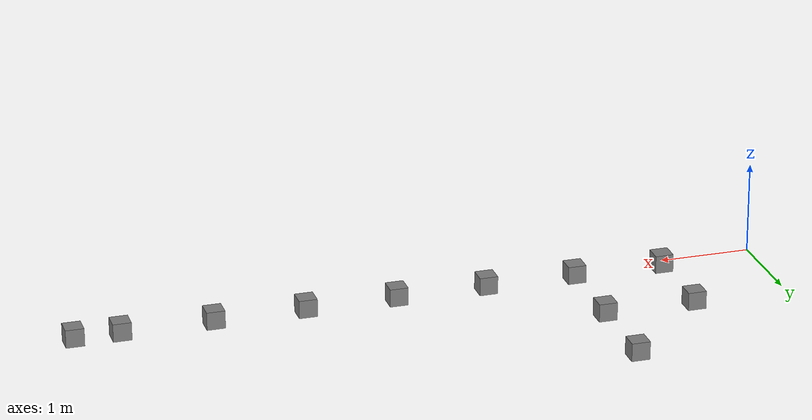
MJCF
<mujoco model="bodies">
    <worldbody>
        <body name="root_body" pos="1 0 0">
            <geom type="box" size="0.1 0.1 0.1"/>
            <body name="nested_body" pos="0 1 0">
                <geom type="box" size="0.1 0.1 0.1"/>
                <joint type="hinge"/>
            </body>
        </body>

        <body name="kinematic_body" mocap="true" pos="2 0 0">
            <geom type="box" size="0.1 0.1 0.1"/>
            <body name="kinematic_child" pos="0 1 0">
                <geom type="box" size="0.1 0.1 0.1"/>
            </body>
        </body>

        <body name="static_base" pos="2 0 0">
            <geom type="box" size="0.1 0.1 0.1"/>
            <body name="articulated_child" pos="0 1 0">
                <geom type="box" size="0.1 0.1 0.1"/>
                <body name="leaf" pos="0 1 0">
                    <geom type="box" size="0.1 0.1 0.1"/>
                    <joint type="hinge"/>
                </body>
            </body>
        </body>

        <body name="explicit_inertia_principal" pos="3 0 0">
            <inertial pos="0.1 0.2 0.3" quat="0.92388 0 0.38268 0" mass="2" diaginertia="0.2 0.1 0.3"/>
            <geom type="box" size="0.1 0.1 0.1"/>
        </body>

        <body name="explicit_non_unit_inertia_principal" pos="3 0 0">
            <inertial pos="0.1 0.2 0.3" quat="1 0.1664 0 0" mass="2" diaginertia="0.2 0.1 0.3"/>
            <geom type="box" size="0.1 0.1 0.1"/>
        </body>

        <body name="explicit_inertia_full" pos="4 0 0">
            <inertial pos="0.1 0.2 0.3" mass="3" fullinertia="0.4 0.3 0.2 0.05 0.02 0.01"/>
            <geom type="box" size="0.1 0.1 0.1"/>
        </body>

        <body name="regular_dynamic" pos="5 0 0">
            <geom type="box" size="0.1 0.1 0.1"/>
        </body>

        <body name="gravity_compensated" pos="5 0 0" gravcomp="0.2">
            <geom type="box" size="0.1 0.1 0.1"/>
        </body>

        <!-- mass comes from a non-colliding geom, which USD cannot accumulate: the body is baked -->
        <body name="mass_from_visual" pos="6 0 0">
            <geom type="box" size="0.1 0.1 0.1" contype="0" conaffinity="0" mass="3.0"/>
            <geom type="box" size="0.1 0.1 0.1" contype="1" conaffinity="1" mass="1.0"/>
        </body>
        <!-- mass comes solely from colliders, so it is left to USD accumulation -->
        <body name="mass_from_colliders" pos="7 0 0">
            <geom type="box" size="0.1 0.1 0.1" mass="2.0"/>
            <geom type="box" size="0.1 0.1 0.1" pos="0.5 0 0" mass="1.0"/>
        </body>
        <body name="zero_inertia" pos="5 0 0">
            <inertial pos="0.1 0.2 0.3" mass="2" diaginertia="0 0 0"/>
            <geom type="box" size="0.1 0.1 0.1"/>
        </body>
    </worldbody>
</mujoco>
